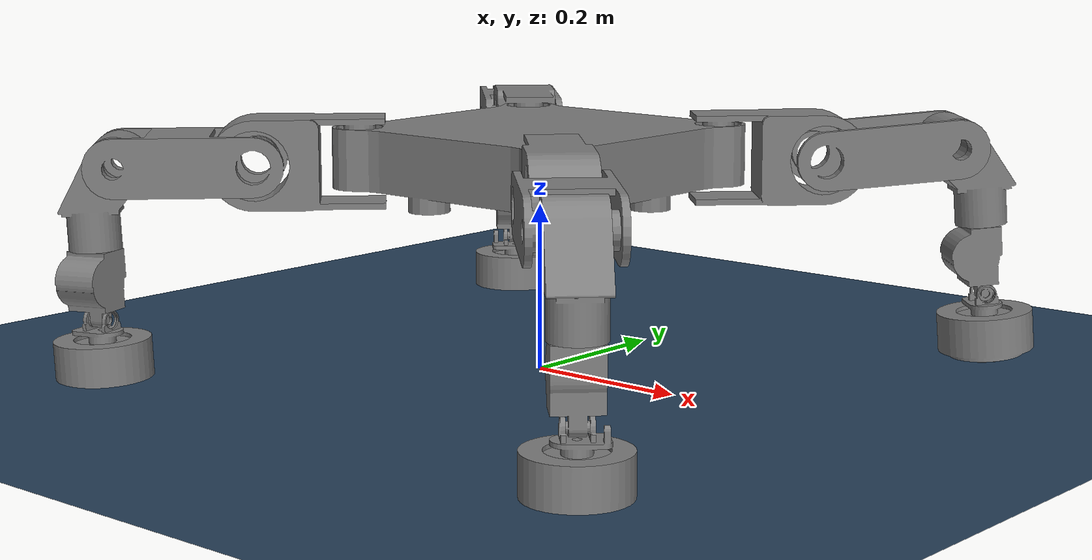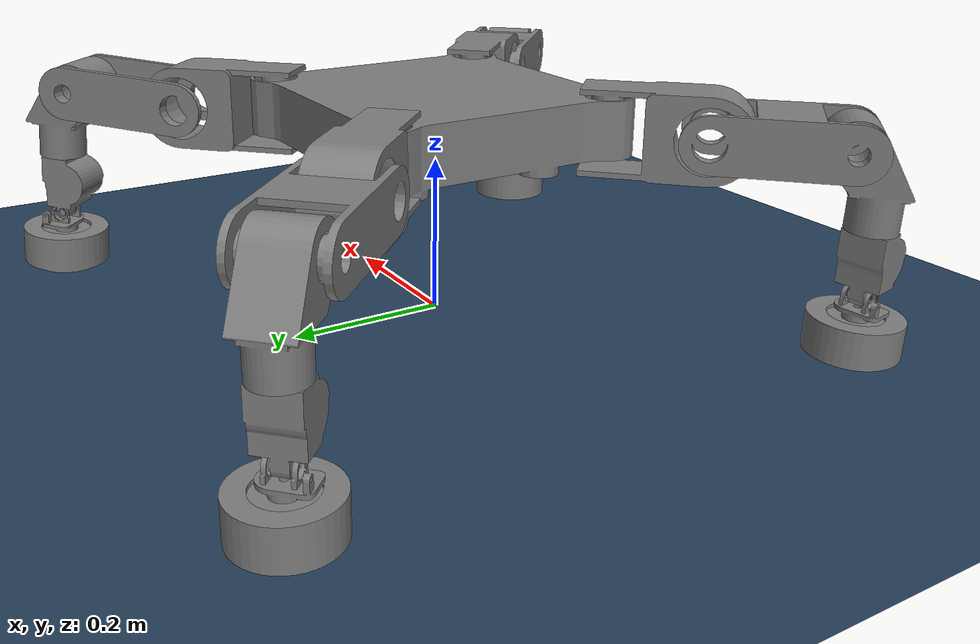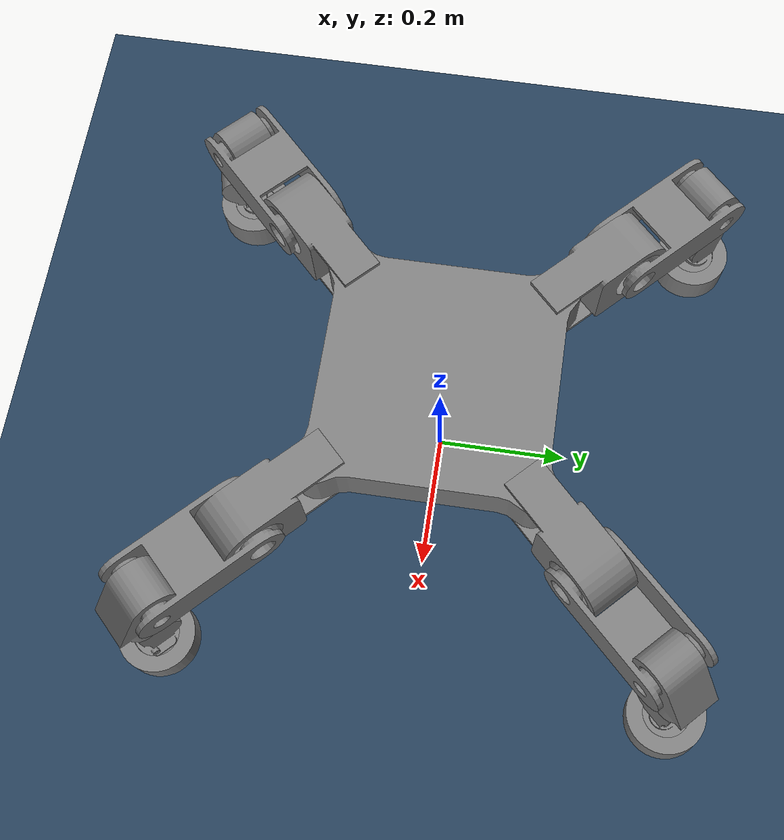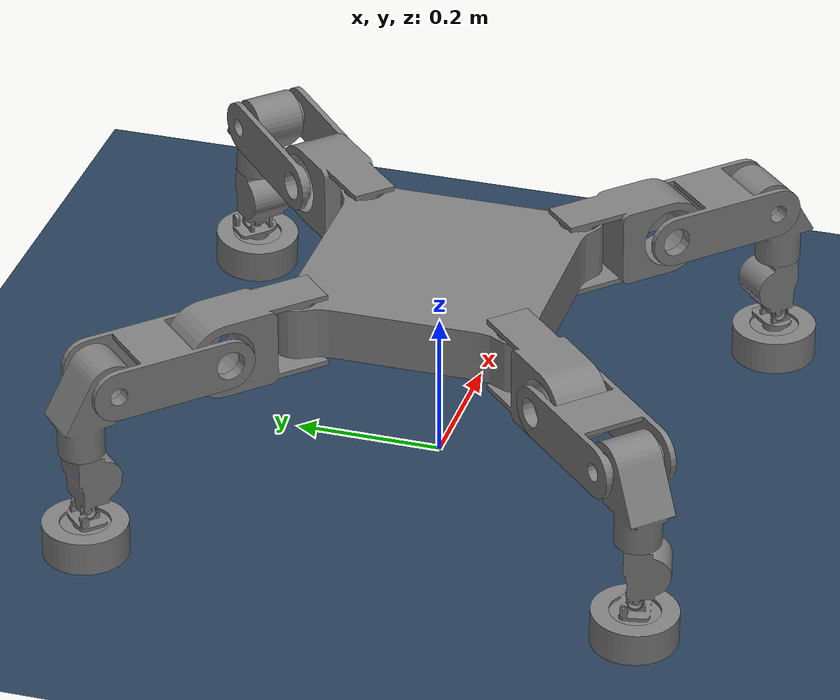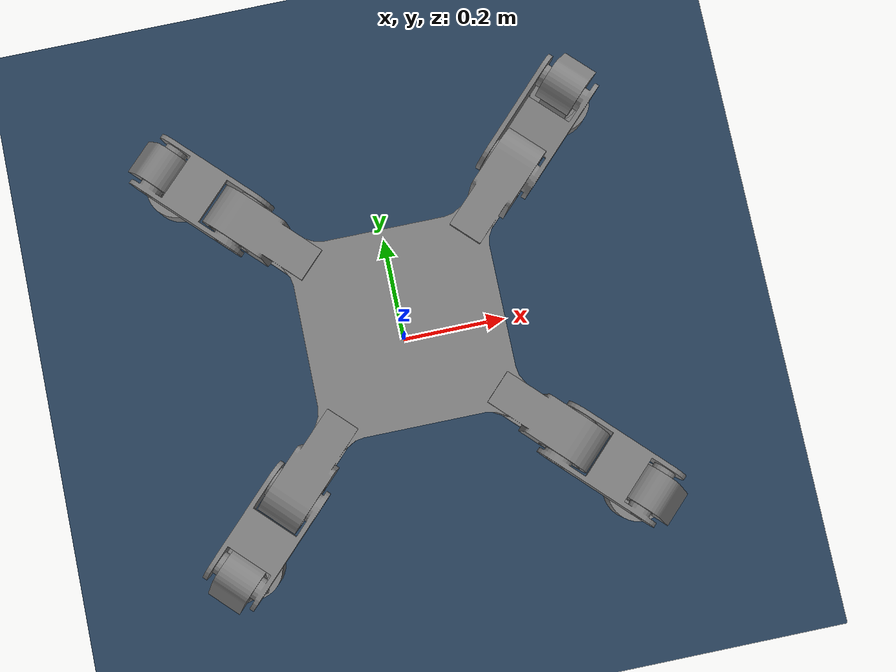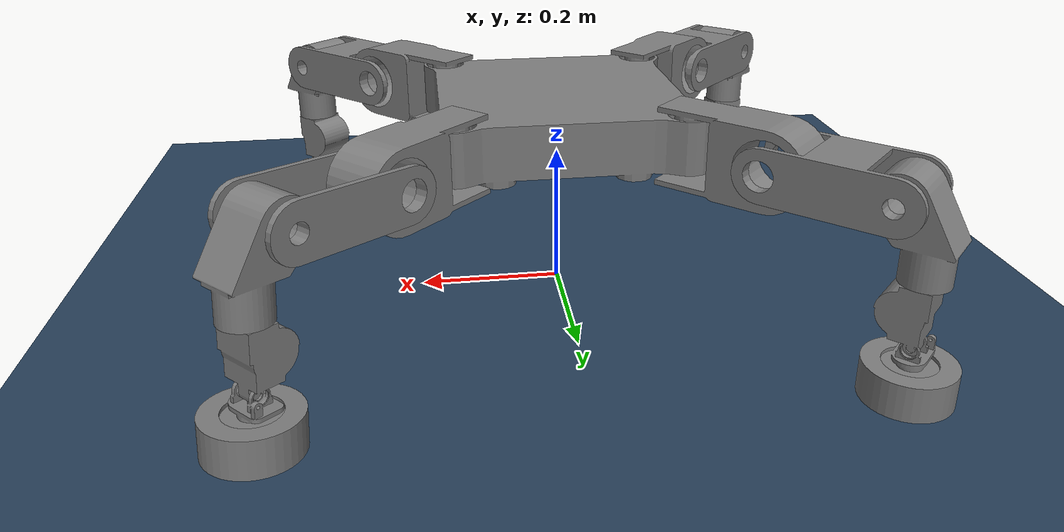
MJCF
<mujoco model="robot scene">
  <include file="robot.xml"/>

  <option timestep="0.001" gravity="0 0 -9.81"/>

  <visual>
    <headlight diffuse="0.6 0.6 0.6" ambient="0.3 0.3 0.3" specular="0 0 0"/>
    <rgba haze="0.15 0.25 0.35 1"/>
  </visual>

  <statistic center="0 0 .3" extent="1.2"/>

  <asset>
    <texture type="skybox" builtin="gradient" rgb1="0.3 0.5 0.7" rgb2="0 0 0" width="512" height="3072"/>
    <texture type="2d" name="groundplane" builtin="checker" mark="edge" rgb1="0.2 0.3 0.4" rgb2="0.1 0.2 0.3"
      markrgb="0.8 0.8 0.8" width="300" height="300"/>
    <material name="groundplane" texture="groundplane" texuniform="true" texrepeat="5 5" reflectance="0.2"/>
  </asset>

  <worldbody>
    <light pos="0 0 0" dir="0 0 -1" directional="true"/>
    <geom name="floor"
      size="0 0 0.05"
      type="plane"
      material="groundplane"
      friction="2. 1.9 0.1"/>
  </worldbody>
</mujoco>

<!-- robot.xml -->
<mujoco model="spider_sldasm">
  <compiler angle="radian" coordinate="local"/>
  <option timestep="0.002" gravity="0 0 -9.81"/>

  <asset>
    <!-- Meshes referenced in URDF (absolute paths copied from URDF) -->
    <mesh name="base_link" file="../meshes/base_link.STL"/>
    <mesh name="Link1-1" file="../meshes/Link1-1.STL"/>
    <mesh name="Link1-2" file="../meshes/Link1-2.STL"/>
    <mesh name="Link1-3" file="../meshes/Link1-3.STL"/>
    <mesh name="Link1-4" file="../meshes/Link1-4.STL"/>
    <mesh name="Link1-5" file="../meshes/Link1-5.STL"/>
    <mesh name="Link1-6" file="../meshes/Link1-6.STL"/>
    <mesh name="Link2-1" file="../meshes/Link2-1.STL"/>
    <mesh name="Link2-2" file="../meshes/Link2-2.STL"/>
    <mesh name="Link2-3" file="../meshes/Link2-3.STL"/>
    <mesh name="Link2-4" file="../meshes/Link2-4.STL"/>
    <mesh name="Link2-5" file="../meshes/Link2-5.STL"/>
    <mesh name="Link2-6" file="../meshes/Link2-6.STL"/>
    <mesh name="Link3-1" file="../meshes/Link3-1.STL"/>
    <mesh name="Link3-2" file="../meshes/Link3-2.STL"/>
    <mesh name="Link3-3" file="../meshes/Link3-3.STL"/>
    <mesh name="Link3-4" file="../meshes/Link3-4.STL"/>
    <mesh name="Link3-5" file="../meshes/Link3-5.STL"/>
    <mesh name="Link3-6" file="../meshes/Link3-6.STL"/>
    <mesh name="Link4-1" file="../meshes/Link4-1.STL"/>
    <mesh name="Link4-2" file="../meshes/Link4-2.STL"/>
    <mesh name="Link4-3" file="../meshes/Link4-3.STL"/>
    <mesh name="Link4-4" file="../meshes/Link4-4.STL"/>
    <mesh name="Link4-5" file="../meshes/Link4-5.STL"/>
    <mesh name="Link4-6" file="../meshes/Link4-6.STL"/>
  </asset>

  <default>
    <joint armature="0" damping="0.1" stiffness="0"/>
    <geom contype="1" conaffinity="1" friction="0.7 .1 .1" density="1000"/>
  </default>

  <worldbody>
    <!-- Base body -->
    <body name="base_link" pos="0 0 0.19287" euler="0 0 0">
    <joint name="root" type="free" />
    <inertial pos="0 0 0" mass="2.0" diaginertia="0.0740610072049505 0.0740610072049504 0.140190829063453"/>
      <geom type="mesh" mesh="base_link" name="geom_base" contype="1" conaffinity="1"/>

      <!-- Leg 1 chain -->
      <body name="Link1-1" pos="0.15 -0.15 0.0616299999999999" euler="0 0 0.785398163397447">
      <inertial pos="0 0 0" mass="0.60284248189571" diaginertia="0.00210602160556376 0.00105493812743913 0.00156945455541681"/>
        <joint name="Joint1-1" type="hinge" axis="0 0 -1"/>
        <geom type="mesh" mesh="Link1-1"/>

        <body name="Link1-2" pos="-0.000499999999999893 -0.122 0" euler="0 1.5707963267949 0">
          <inertial pos="0 0 0" mass="0.28929926430132" diaginertia="0.00152383905464937 0.000667153490245799 0.0011236331918339"/>
          <joint name="Joint1-2" type="hinge" axis="0 0 1"/>
          <geom type="mesh" mesh="Link1-2"/>

          <body name="Link1-3" pos="0 -0.16 0" euler="0 0 -3.14159265358979">
            <inertial pos="0 0 0" mass="0.308599743887214" diaginertia="0.000308593278300975 0.00028646456343213 0.000370142068779215"/>
            <joint name="Joint1-3" type="hinge" axis="0 0 -1"/>
            <geom type="mesh" mesh="Link1-3"/>

            <body name="Link1-4" pos="-0.0980000000000001 0.0330000000000001 0" euler="0 1.5707963267949 0">
              <inertial pos="0 0 0" mass="0.202208844102152" diaginertia="0.000133800346594459 0.000134543569387916 9.70688132526932E-05"/>
              <geom type="mesh" mesh="Link1-4"/>

              <body name="Link1-5" pos="0 -0.000999979603148238 -0.0869999940509131" euler="0 -1.5707963267949 0">
                <inertial pos="0 0 0" mass="0.172400029670848" diaginertia="9.58040310067531E-05 9.1862619595287E-05 8.93978244481122E-05"/>
                <geom type="mesh" mesh="Link1-5"/>

                <body name="Link1-6" pos="-0.0695 0 0" euler="0 1.5708 0">
                  <inertial pos="0 0 0" mass="0.385234192705995" diaginertia="0.000490900876230675 0.000490900876230675 0.000769296861776585"/>
                  <geom type="mesh" mesh="Link1-6"/>

                  <body name="Link1-7" pos="0 0 0.173">
                    <inertial pos="0 0 0" mass="0.0" diaginertia="0 0 0"/>
                  </body>
                </body>
              </body>
            </body>
          </body>
        </body>
      </body>

      <!-- Leg 2 chain (mirror of leg1 with URDF origins) -->
      <body name="Link2-1" pos="0.15 0.15 0.0616299999999999" euler="0 0 2.35619449019235">
  <inertial pos="0 0 0" mass="0.602842481895709" diaginertia="0.00210602160556376 0.00105493812743913 0.00156945455541681"/>
  <joint name="Joint2-1" type="hinge" axis="0 0 -1"/>
        <geom type="mesh" mesh="Link2-1"/>

        <body name="Link2-2" pos="-0.000500000000000117 -0.121999999999999 0" euler="0 1.5707963267949 3.06">
          <inertial pos="0 0 0" mass="0.28929926430132" diaginertia="0.00152383905464937 0.0006671534902458 0.0011236331918339"/>
          <joint name="Joint2-2" type="hinge" axis="0 0 1"/>
          <geom type="mesh" mesh="Link2-2"/>

          <body name="Link2-3" pos="0 0.16 0" euler="0 0 0">
            <inertial pos="0 0 0" mass="0.308599743887213" diaginertia="0.000308593278300975 0.000286464563432129 0.000370142068779214"/>
            <joint name="Joint2-3" type="hinge" axis="0 0 -1"/>
            <geom type="mesh" mesh="Link2-3"/>

            <body name="Link2-4" pos="-0.098 0.033 0" euler="0 1.5707963267949 0">
              <inertial pos="0 0 0" mass="0.202208844102152" diaginertia="0.000133800346594459 0.000134543569387916 9.70688132526931E-05"/>
              <geom type="mesh" mesh="Link2-4"/>

              <body name="Link2-5" pos="0 -0.000999979603148349 -0.0869999940509131" euler="0 -1.5707963267949 0">
                <inertial pos="0 0 0" mass="0.172400029670848" diaginertia="9.58040310067532E-05 9.18626195952871E-05 8.93978244481122E-05"/>
                <geom type="mesh" mesh="Link2-5"/>

                <body name="Link2-6" pos="-0.0695 0 0" euler="0 1.5708 0">
                  <inertial pos="0 0 0" mass="0.385234192705996" diaginertia="0.000490900876230676 0.000490900876230676 0.000769296861776585"/>
                  <geom type="mesh" mesh="Link2-6"/>

                  <body name="Link2-7" pos="0 0 0.173">
                    <inertial pos="0 0 0" mass="0.0" diaginertia="0 0 0"/>
                  </body>
                </body>
              </body>
            </body>
          </body>
        </body>
      </body>

      <!-- Leg 3 chain -->
      <body name="Link3-1" pos="-0.150000000000001 0.15 0.0616299999999999" euler="0 0 -2.35619449019235">
  <inertial pos="0 0 0" mass="0.602842481895709" diaginertia="0.00210602160556376 0.00105493812743913 0.0015694545554168"/>
  <joint name="Joint3-1" type="hinge" axis="0 0 -1"/>
        <geom type="mesh" mesh="Link3-1"/>

        <body name="Link3-2" pos="-0.000500000000000117 -0.121999999999999 0" euler="0 1.5707963267949 0">
          <inertial pos="0 0 0" mass="0.28929926430132" diaginertia="0.00152383905464937 0.0006671534902458 0.0011236331918339"/>
          <joint name="Joint3-2" type="hinge" axis="0 0 1"/>
          <geom type="mesh" mesh="Link3-2"/>

          <body name="Link3-3" pos="0 -0.16 0" euler="0 0 3.14159265358979">
            <inertial pos="0 0 0" mass="0.308599743887213" diaginertia="0.000308593278300975 0.000286464563432129 0.000370142068779214"/>
            <joint name="Joint3-3" type="hinge" axis="0 0 -1"/>
            <geom type="mesh" mesh="Link3-3"/>

            <body name="Link3-4" pos="-0.098 0.033 0" euler="0 1.5707963267949 0">
              <inertial pos="0 0 0" mass="0.202208844102152" diaginertia="0.000133800346594459 0.000134543569387916 9.70688132526931E-05"/>
              <geom type="mesh" mesh="Link3-4"/>

              <body name="Link3-5" pos="0 -0.000999979603148349 -0.0869999940509131" euler="0 -1.5707963267949 0">
                <inertial pos="0 0 0" mass="0.172400029670848" diaginertia="9.58040310067532E-05 9.18626195952871E-05 8.93978244481122E-05"/>
                <geom type="mesh" mesh="Link3-5"/>

                <body name="Link3-6" pos="-0.0695 0 0" euler="0 1.5708 0">
                  <inertial pos="0 0 0" mass="0.385234192705996" diaginertia="0.000490900876230676 0.000490900876230676 0.000769296861776585"/>
                  <geom type="mesh" mesh="Link3-6"/>

                  <body name="Link3-7" pos="0 0 0.173">
                    <inertial pos="0 0 0" mass="0.0" diaginertia="0 0 0"/>
                  </body>
                </body>
              </body>
            </body>
          </body>
        </body>
      </body>

      <!-- Leg 4 chain -->
      <body name="Link4-1" pos="-0.15 -0.15 0.0616299999999999" euler="0 0 -0.785398163397446">
        <inertial pos="0 0 0" mass="0.60284248189571" diaginertia="0.00210602160556376 0.00105493812743913 0.00156945455541681"/>
  <joint name="Joint4-1" type="hinge" axis="0 0 -1"/>
        <geom type="mesh" mesh="Link4-1"/>

        <body name="Link4-2" pos="-0.000499999999999957 -0.122 0" euler="0 1.5707963267949 0">
          <inertial pos="0 0 0" mass="0.289299264301321" diaginertia="0.00152383905464937 0.0006671534902458 0.0011236331918339"/>
          <joint name="Joint4-2" type="hinge" axis="0 0 1"/>
          <geom type="mesh" mesh="Link4-2"/>

          <body name="Link4-3" pos="0 -0.16 0" euler="0 0 -3.10297210055977">
            <inertial pos="0 0 0" mass="0.308599743887214" diaginertia="0.000308593278300976 0.00028646456343213 0.000370142068779215"/>
            <joint name="Joint4-3" type="hinge" axis="0 0 -1"/>
            <geom type="mesh" mesh="Link4-3"/>

            <body name="Link4-4" pos="-0.0980000000000001 0.0330000000000001 0" euler="-1.0873493252277 1.57079631189374 -1.03242181344867">
              <inertial pos="0 0 0" mass="0.202208844102152" diaginertia="0.000133800346594459 0.000134543569387916 9.70688132526932E-05"/>
              <geom type="mesh" mesh="Link4-4"/>

              <body name="Link4-5" pos="0 -0.000999979603148349 -0.086999994050913" euler="-1.5707963267949 -1.53217577376487 -1.5707963267949">
                <inertial pos="0 0 0" mass="0.172400029670848" diaginertia="9.58040310067531E-05 9.1862619595287E-05 8.93978244481121E-05"/>
                <geom type="mesh" mesh="Link4-5"/>

                <body name="Link4-6" pos="-0.0695 0 0" euler="0 1.5708 0">
                  <inertial pos="0 0 0" mass="0.385234192705995" diaginertia="0.000490900876230676 0.000490900876230676 0.000769296861776584"/>
                  <geom type="mesh" mesh="Link4-6"/>

                  <body name="Link4-7" pos="0 0 0.173">
                    <inertial pos="0 0 0" mass="0.0" diaginertia="0 0 0"/>
                  </body>
                </body>
              </body>
            </body>
          </body>
        </body>
      </body>

    </body>
  </worldbody>

  <!-- Actuator placeholders: add motors for revolute joints if needed -->
  <actuator>
    <!-- Example: position actuators for hinge joints -->
    <motor name="m_Joint1_1" joint="Joint1-1" gear="1"/>
    <motor name="m_Joint1_2" joint="Joint1-2" gear="1"/>
    <motor name="m_Joint1_3" joint="Joint1-3" gear="1"/>
    <motor name="m_Joint2_1" joint="Joint2-1" gear="1"/>
    <motor name="m_Joint2_2" joint="Joint2-2" gear="1"/>
    <motor name="m_Joint2_3" joint="Joint2-3" gear="1"/>
    <motor name="m_Joint3_1" joint="Joint3-1" gear="1"/>
    <motor name="m_Joint3_2" joint="Joint3-2" gear="1"/>
    <motor name="m_Joint3_3" joint="Joint3-3" gear="1"/>
    <motor name="m_Joint4_1" joint="Joint4-1" gear="1"/>
    <motor name="m_Joint4_2" joint="Joint4-2" gear="1"/>
    <motor name="m_Joint4_3" joint="Joint4-3" gear="1"/>
  </actuator>

</mujoco>
